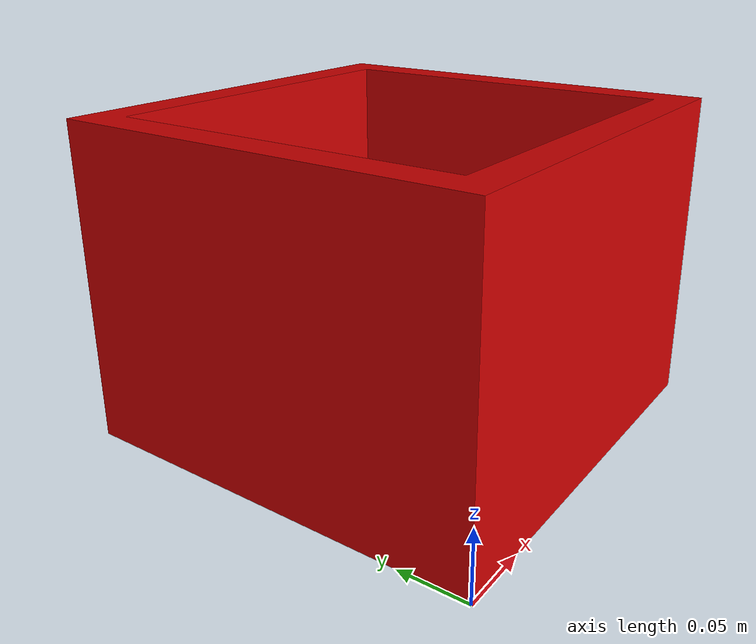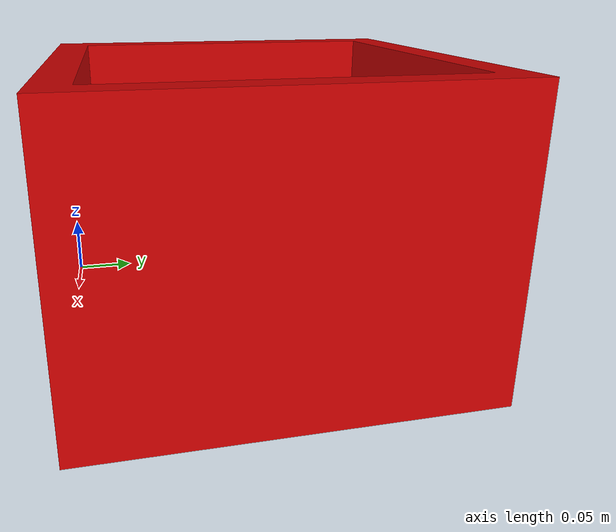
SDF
<?xml version="1.0" ?>
<sdf version="1.7">
  <model name="TransportBox">
    <static>false</static>
    <link name="link">
      <inertial>
        <pose>0.1524 0.1524 0.1143 0 0 0</pose>
        <mass>0.5</mass>
        <inertia>
          <ixx>0.006048</ixx><ixy>0</ixy><ixz>0</ixz>
          <iyy>0.006048</iyy><iyz>0</iyz>
          <izz>0.007742</izz>
        </inertia>
      </inertial>
      <collision name="collision">
        <pose>0 0 0.0 0 0 0</pose>
        <geometry>
          <mesh>
            <uri>model://TransportBox/meshes/TransportBox.stl</uri>
          </mesh>
        </geometry>
      </collision>
      <visual name="visual">
        <geometry>
          <mesh>
            <uri>model://TransportBox/meshes/TransportBox.stl</uri>
          </mesh>
        </geometry>
        <material>
          <ambient>0.5 0.0 0.0 1</ambient>
          <diffuse>0.8 0.0 0.0 1</diffuse>
          <specular>0.9 0.4 0.4 1</specular>
        </material>
      </visual>
      <sensor name="transport_box_contact" type="contact">
        <contact>
          <collision>collision</collision>
        </contact>
        <always_on>true</always_on>
        <update_rate>30</update_rate>
        <plugin name="transport_box_bumper" filename="libgazebo_ros_bumper.so">
          <ros>
            <remapping>~/out:=transport_box_contact</remapping>
          </ros>
          <frame_name>link</frame_name>
        </plugin>
      </sensor>
    </link>
  </model>
</sdf>
